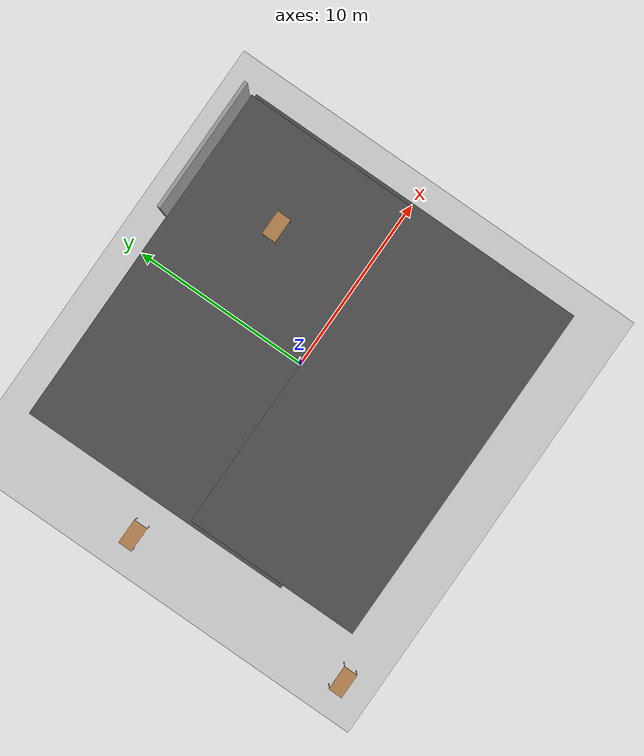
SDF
<sdf version="1.6">
 <world name="default">
  <light name="sun" type="directional">
   <pose>0 0 10 0 -0 0</pose>
   <diffuse>0.8 0.8 0.8 1</diffuse>
   <specular>0.2 0.2 0.2 1</specular>
   <attenuation>
    <range>1000</range>
    <constant>0.9</constant>
    <linear>0.01</linear>
    <quadratic>0.001</quadratic>
   </attenuation>
   <direction>-0.5 0.1 -0.9</direction>
  </light>
  <model name="ground_plane">
   <static>1</static>
   <link name="link">
    <collision name="collision">
     <geometry><plane><normal>0 0 1</normal><size>100 100</size></plane></geometry>
     <surface><friction><ode><mu>100</mu><mu2>50</mu2></ode></friction></surface>
    </collision>
    <visual name="visual">
     <cast_shadows>0</cast_shadows>
     <geometry><plane><normal>0 0 1</normal><size>100 100</size></plane></geometry>
     <material>
      <script><uri>file://media/materials/scripts/gazebo.material</uri><name>Gazebo/Grey</name></script>
     </material>
    </visual>
    <velocity_decay><linear>0</linear><angular>0</angular></velocity_decay>
   </link>
  </model>
  <physics name="default_physics" default="0" type="ode">
   <max_step_size>0.001</max_step_size>
   <real_time_factor>1</real_time_factor>
   <real_time_update_rate>1000</real_time_update_rate>
  </physics>
  <scene><ambient>0.4 0.4 0.4 1</ambient><background>0.7 0.7 0.7 1</background><shadows>1</shadows></scene>
  <model name="grey_wall">
   <static>1</static>
   <link name="link">
    <pose>0 0 1.4 0 -0 0</pose>
    <collision name="collision"><geometry><box><size>7.5 0.2 2.8</size></box></geometry></collision>
    <visual name="visual">
     <cast_shadows>0</cast_shadows>
     <geometry><box><size>7.5 0.2 2.8</size></box></geometry>
     <material>
      <script>
       <uri>model://grey_wall/materials/scripts</uri>
       <uri>model://grey_wall/materials/textures</uri>
       <name>vrc/grey_wall</name>
      </script>
     </material>
    </visual>
    <velocity_decay><linear>0</linear><angular>0</angular></velocity_decay>
   </link>
   <pose>6.03823 10.0975 0.02647 0 -0 0</pose>
  </model>
  <gravity>0 0 -9.8</gravity>
  <magnetic_field>6e-06 2.3e-05 -4.2e-05</magnetic_field>
  <atmosphere type="adiabatic"/>
  <spherical_coordinates>
   <surface_model>EARTH_WGS84</surface_model>
   <latitude_deg>0</latitude_deg>
   <longitude_deg>0</longitude_deg>
   <elevation>0</elevation>
   <heading_deg>0</heading_deg>
  </spherical_coordinates>
  <model name="asphalt_plane">
   <static>1</static>
   <link name="link">
    <collision name="collision"><geometry><box><size>20 20 0.1</size></box></geometry></collision>
    <visual name="visual">
     <cast_shadows>0</cast_shadows>
     <geometry><box><size>20 20 0.1</size></box></geometry>
     <material>
      <script>
       <uri>model://asphalt_plane/materials/scripts</uri>
       <uri>model://asphalt_plane/materials/textures</uri>
       <name>vrc/asphalt</name>
      </script>
     </material>
    </visual>
   </link>
   <pose>-0.053324 0.031083 0 0.014047 -0 0</pose>
  </model>
  <model name="table">
   <static>0</static>
   <link name="link">
    <collision name="surface">
     <pose>0 0 1 0 -0 0</pose>
     <geometry><box><size>1.5 0.8 0.03</size></box></geometry>
     <surface><friction><ode><mu>0.6</mu><mu2>0.6</mu2></ode></friction></surface>
    </collision>
    <visual name="visual1">
     <pose>0 0 1 0 -0 0</pose>
     <geometry><box><size>1.4 0.8 0.04</size></box></geometry>
     <material>
      <script><uri>file://media/materials/scripts/gazebo.material</uri><name>Gazebo/Wood</name></script>
     </material>
    </visual>
    <collision name="front_left_leg">
     <pose>0.68 0.38 0.5 0 -0 0</pose>
     <geometry><cylinder><radius>0.02</radius><length>1</length></cylinder></geometry>
    </collision>
    <visual name="front_left_leg">
     <pose>0.68 0.38 0.5 0 -0 0</pose>
     <geometry><cylinder><radius>0.02</radius><length>1</length></cylinder></geometry>
     <material>
      <script><uri>file://media/materials/scripts/gazebo.material</uri><name>Gazebo/Grey</name></script>
     </material>
    </visual>
    <collision name="front_right_leg">
     <pose>0.68 -0.38 0.5 0 -0 0</pose>
     <geometry><cylinder><radius>0.02</radius><length>1</length></cylinder></geometry>
    </collision>
    <visual name="front_right_leg">
     <pose>0.68 -0.38 0.5 0 -0 0</pose>
     <geometry><cylinder><radius>0.02</radius><length>1</length></cylinder></geometry>
     <material>
      <script><uri>file://media/materials/scripts/gazebo.material</uri><name>Gazebo/Grey</name></script>
     </material>
    </visual>
    <collision name="back_right_leg">
     <pose>-0.68 -0.38 0.5 0 -0 0</pose>
     <geometry><cylinder><radius>0.02</radius><length>1</length></cylinder></geometry>
    </collision>
    <visual name="back_right_leg">
     <pose>-0.68 -0.38 0.5 0 -0 0</pose>
     <geometry><cylinder><radius>0.02</radius><length>1</length></cylinder></geometry>
     <material>
      <script><uri>file://media/materials/scripts/gazebo.material</uri><name>Gazebo/Grey</name></script>
     </material>
    </visual>
    <collision name="back_left_leg">
     <pose>-0.68 0.38 0.5 0 -0 0</pose>
     <geometry><cylinder><radius>0.02</radius><length>1</length></cylinder></geometry>
    </collision>
    <visual name="back_left_leg">
     <pose>-0.68 0.38 0.5 0 -0 0</pose>
     <geometry><cylinder><radius>0.02</radius><length>1</length></cylinder></geometry>
     <material>
      <script><uri>file://media/materials/scripts/gazebo.material</uri><name>Gazebo/Grey</name></script>
     </material>
    </visual>
    <inertial>
     <inertia><ixx>1</ixx><ixy>0</ixy><ixz>0</ixz><iyy>1</iyy><iyz>0</iyz><izz>1</izz></inertia>
     <mass>1</mass>
    </inertial>
   </link>
   <pose>5 4.99835 0.119775 0.014047 -0 0</pose>
  </model>
  <model name="asphalt_plane_0">
   <static>1</static>
   <link name="link">
    <collision name="collision"><geometry><box><size>20 20 0.1</size></box></geometry></collision>
    <visual name="visual">
     <cast_shadows>0</cast_shadows>
     <geometry><box><size>20 20 0.1</size></box></geometry>
     <material>
      <script>
       <uri>model://asphalt_plane/materials/scripts</uri>
       <uri>model://asphalt_plane/materials/textures</uri>
       <name>vrc/asphalt</name>
      </script>
     </material>
    </visual>
   </link>
   <pose>0.13539 -0.142128 0 0 -0 0</pose>
  </model>
  <model name="table_clone">
   <static>0</static>
   <link name="link">
    <collision name="surface">
     <pose>0 0 1 0 -0 0</pose>
     <geometry><box><size>1.5 0.8 0.03</size></box></geometry>
     <surface><friction><ode><mu>0.6</mu><mu2>0.6</mu2></ode></friction></surface>
    </collision>
    <visual name="visual1">
     <pose>0 0 1 0 -0 0</pose>
     <geometry><box><size>1.4 0.8 0.04</size></box></geometry>
     <material>
      <script><uri>file://media/materials/scripts/gazebo.material</uri><name>Gazebo/Wood</name></script>
     </material>
    </visual>
    <collision name="front_left_leg">
     <pose>0.68 0.38 0.5 0 -0 0</pose>
     <geometry><cylinder><radius>0.02</radius><length>1</length></cylinder></geometry>
    </collision>
    <visual name="front_left_leg">
     <pose>0.68 0.38 0.5 0 -0 0</pose>
     <geometry><cylinder><radius>0.02</radius><length>1</length></cylinder></geometry>
     <material>
      <script><uri>file://media/materials/scripts/gazebo.material</uri><name>Gazebo/Grey</name></script>
     </material>
    </visual>
    <collision name="front_right_leg">
     <pose>0.68 -0.38 0.5 0 -0 0</pose>
     <geometry><cylinder><radius>0.02</radius><length>1</length></cylinder></geometry>
    </collision>
    <visual name="front_right_leg">
     <pose>0.68 -0.38 0.5 0 -0 0</pose>
     <geometry><cylinder><radius>0.02</radius><length>1</length></cylinder></geometry>
     <material>
      <script><uri>file://media/materials/scripts/gazebo.material</uri><name>Gazebo/Grey</name></script>
     </material>
    </visual>
    <collision name="back_right_leg">
     <pose>-0.68 -0.38 0.5 0 -0 0</pose>
     <geometry><cylinder><radius>0.02</radius><length>1</length></cylinder></geometry>
    </collision>
    <visual name="back_right_leg">
     <pose>-0.68 -0.38 0.5 0 -0 0</pose>
     <geometry><cylinder><radius>0.02</radius><length>1</length></cylinder></geometry>
     <material>
      <script><uri>file://media/materials/scripts/gazebo.material</uri><name>Gazebo/Grey</name></script>
     </material>
    </visual>
    <collision name="back_left_leg">
     <pose>-0.68 0.38 0.5 0 -0 0</pose>
     <geometry><cylinder><radius>0.02</radius><length>1</length></cylinder></geometry>
    </collision>
    <visual name="back_left_leg">
     <pose>-0.68 0.38 0.5 0 -0 0</pose>
     <geometry><cylinder><radius>0.02</radius><length>1</length></cylinder></geometry>
     <material>
      <script><uri>file://media/materials/scripts/gazebo.material</uri><name>Gazebo/Grey</name></script>
     </material>
    </visual>
    <inertial>
     <inertia><ixx>1</ixx><ixy>0</ixy><ixz>0</ixz><iyy>1</iyy><iyz>0</iyz><izz>1</izz></inertia>
     <mass>1</mass>
    </inertial>
   </link>
   <pose>-12 2 -1e-06 -2e-06 0 0</pose>
  </model>
  <model name="table_clone_0">
   <static>0</static>
   <link name="link">
    <collision name="surface">
     <pose>0 0 1 0 -0 0</pose>
     <geometry><box><size>1.5 0.8 0.03</size></box></geometry>
     <surface><friction><ode><mu>0.6</mu><mu2>0.6</mu2></ode></friction></surface>
    </collision>
    <visual name="visual1">
     <pose>0 0 1 0 -0 0</pose>
     <geometry><box><size>1.4 0.8 0.04</size></box></geometry>
     <material>
      <script><uri>file://media/materials/scripts/gazebo.material</uri><name>Gazebo/Wood</name></script>
     </material>
    </visual>
    <collision name="front_left_leg">
     <pose>0.68 0.38 0.5 0 -0 0</pose>
     <geometry><cylinder><radius>0.02</radius><length>1</length></cylinder></geometry>
    </collision>
    <visual name="front_left_leg">
     <pose>0.68 0.38 0.5 0 -0 0</pose>
     <geometry><cylinder><radius>0.02</radius><length>1</length></cylinder></geometry>
     <material>
      <script><uri>file://media/materials/scripts/gazebo.material</uri><name>Gazebo/Grey</name></script>
     </material>
    </visual>
    <collision name="front_right_leg">
     <pose>0.68 -0.38 0.5 0 -0 0</pose>
     <geometry><cylinder><radius>0.02</radius><length>1</length></cylinder></geometry>
    </collision>
    <visual name="front_right_leg">
     <pose>0.68 -0.38 0.5 0 -0 0</pose>
     <geometry><cylinder><radius>0.02</radius><length>1</length></cylinder></geometry>
     <material>
      <script><uri>file://media/materials/scripts/gazebo.material</uri><name>Gazebo/Grey</name></script>
     </material>
    </visual>
    <collision name="back_right_leg">
     <pose>-0.68 -0.38 0.5 0 -0 0</pose>
     <geometry><cylinder><radius>0.02</radius><length>1</length></cylinder></geometry>
    </collision>
    <visual name="back_right_leg">
     <pose>-0.68 -0.38 0.5 0 -0 0</pose>
     <geometry><cylinder><radius>0.02</radius><length>1</length></cylinder></geometry>
     <material>
      <script><uri>file://media/materials/scripts/gazebo.material</uri><name>Gazebo/Grey</name></script>
     </material>
    </visual>
    <collision name="back_left_leg">
     <pose>-0.68 0.38 0.5 0 -0 0</pose>
     <geometry><cylinder><radius>0.02</radius><length>1</length></cylinder></geometry>
    </collision>
    <visual name="back_left_leg">
     <pose>-0.68 0.38 0.5 0 -0 0</pose>
     <geometry><cylinder><radius>0.02</radius><length>1</length></cylinder></geometry>
     <material>
      <script><uri>file://media/materials/scripts/gazebo.material</uri><name>Gazebo/Grey</name></script>
     </material>
    </visual>
    <inertial>
     <inertia><ixx>1</ixx><ixy>0</ixy><ixz>0</ixz><iyy>1</iyy><iyz>0</iyz><izz>1</izz></inertia>
     <mass>1</mass>
    </inertial>
   </link>
   <pose>-12 -11 -9e-06 0 -1e-06 0</pose>
  </model>
 </world>
</sdf>
